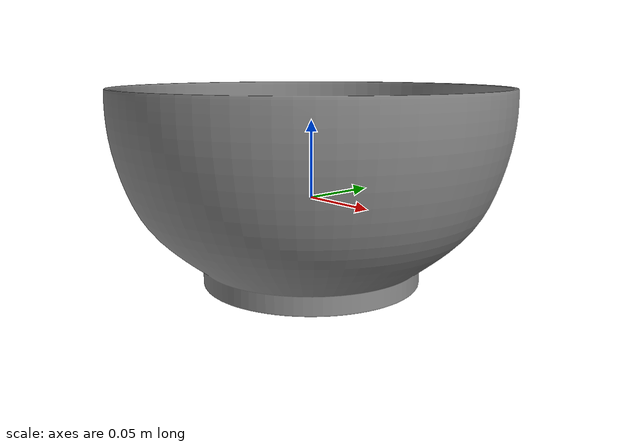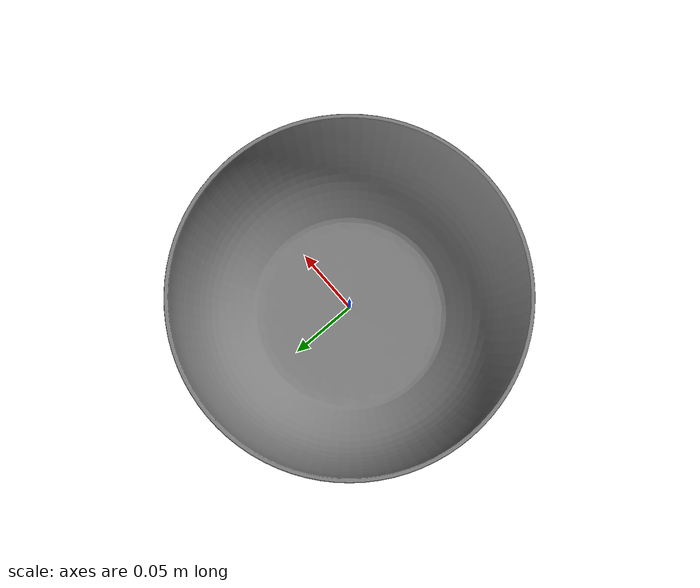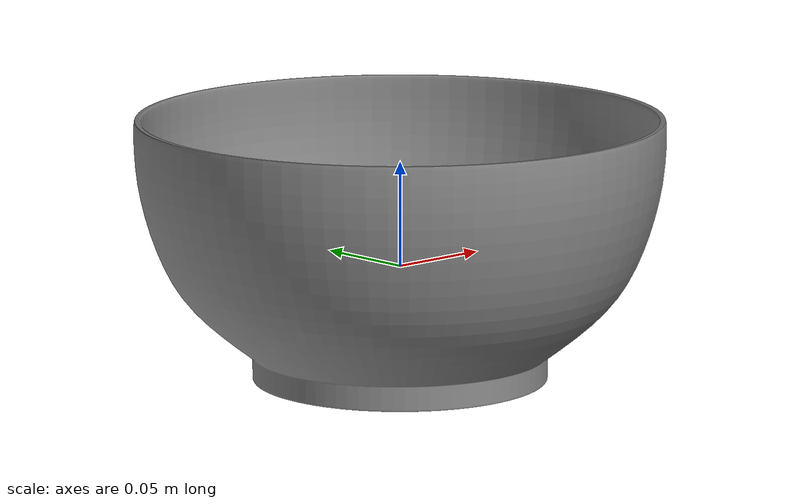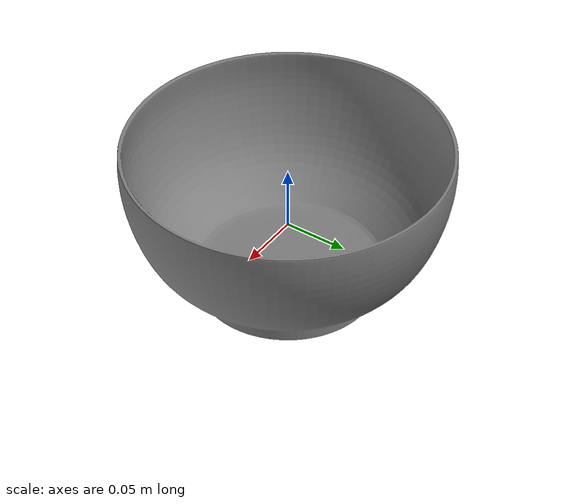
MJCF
<mujoco model="big_bowl">
    <compiler angle="radian" meshdir="../meshes/" texturedir="../meshes/textures/" autolimits="true" inertiafromgeom="false"/>
    <asset>
        <mesh name="big_bowl_visual" file="obj/BigBowl.obj" />
        <mesh name="UCX_BigBowl_001" file="stl/UCX_BigBowl_001.stl" />
		<mesh name="UCX_BigBowl_002" file="stl/UCX_BigBowl_002.stl" />
		<mesh name="UCX_BigBowl_003" file="stl/UCX_BigBowl_003.stl" />
		<mesh name="UCX_BigBowl_004" file="stl/UCX_BigBowl_004.stl" />
		<mesh name="UCX_BigBowl_005" file="stl/UCX_BigBowl_005.stl" />
		<mesh name="UCX_BigBowl_006" file="stl/UCX_BigBowl_006.stl" />
		<mesh name="UCX_BigBowl_007" file="stl/UCX_BigBowl_007.stl" />
		<mesh name="UCX_BigBowl_008" file="stl/UCX_BigBowl_008.stl" />
		<mesh name="UCX_BigBowl_009" file="stl/UCX_BigBowl_009.stl" />
		<mesh name="UCX_BigBowl_010" file="stl/UCX_BigBowl_010.stl" />
		<mesh name="UCX_BigBowl_011" file="stl/UCX_BigBowl_011.stl" />
		<mesh name="UCX_BigBowl_012" file="stl/UCX_BigBowl_012.stl" />
		<mesh name="UCX_BigBowl_013" file="stl/UCX_BigBowl_013.stl" />
		<mesh name="UCX_BigBowl_014" file="stl/UCX_BigBowl_014.stl" />
		<mesh name="UCX_BigBowl_015" file="stl/UCX_BigBowl_015.stl" />
		<mesh name="UCX_BigBowl_016" file="stl/UCX_BigBowl_016.stl" />
		<mesh name="UCX_BigBowl_017" file="stl/UCX_BigBowl_017.stl" />
		<mesh name="UCX_BigBowl_018" file="stl/UCX_BigBowl_018.stl" />
		<mesh name="UCX_BigBowl_019" file="stl/UCX_BigBowl_019.stl" />
		<mesh name="UCX_BigBowl_020" file="stl/UCX_BigBowl_020.stl" />
		<mesh name="UCX_BigBowl_021" file="stl/UCX_BigBowl_021.stl" />
		<mesh name="UCX_BigBowl_022" file="stl/UCX_BigBowl_022.stl" />
		<mesh name="UCX_BigBowl_023" file="stl/UCX_BigBowl_023.stl" />
		<mesh name="UCX_BigBowl_024" file="stl/UCX_BigBowl_024.stl" />
		<mesh name="UCX_BigBowl_025" file="stl/UCX_BigBowl_025.stl" />
		<mesh name="UCX_BigBowl_026" file="stl/UCX_BigBowl_026.stl" />
		<mesh name="UCX_BigBowl_027" file="stl/UCX_BigBowl_027.stl" />
		<mesh name="UCX_BigBowl_028" file="stl/UCX_BigBowl_028.stl" />
		<mesh name="UCX_BigBowl_029" file="stl/UCX_BigBowl_029.stl" />
		<mesh name="UCX_BigBowl_030" file="stl/UCX_BigBowl_030.stl" />
		<mesh name="UCX_BigBowl_031" file="stl/UCX_BigBowl_031.stl" />
		<mesh name="UCX_BigBowl_032" file="stl/UCX_BigBowl_032.stl" />
		<mesh name="UCX_BigBowl_033" file="stl/UCX_BigBowl_033.stl" />
		<mesh name="UCX_BigBowl_034" file="stl/UCX_BigBowl_034.stl" />
		<mesh name="UCX_BigBowl_035" file="stl/UCX_BigBowl_035.stl" />
		<mesh name="UCX_BigBowl_036" file="stl/UCX_BigBowl_036.stl" />
		<mesh name="UCX_BigBowl_037" file="stl/UCX_BigBowl_037.stl" />
		<mesh name="UCX_BigBowl_038" file="stl/UCX_BigBowl_038.stl" />
		<mesh name="UCX_BigBowl_039" file="stl/UCX_BigBowl_039.stl" />
		<mesh name="UCX_BigBowl_040" file="stl/UCX_BigBowl_040.stl" />
		<mesh name="UCX_BigBowl_041" file="stl/UCX_BigBowl_041.stl" />
		<mesh name="UCX_BigBowl_042" file="stl/UCX_BigBowl_042.stl" />
		<mesh name="UCX_BigBowl_043" file="stl/UCX_BigBowl_043.stl" />
		<mesh name="UCX_BigBowl_044" file="stl/UCX_BigBowl_044.stl" />
		<mesh name="UCX_BigBowl_045" file="stl/UCX_BigBowl_045.stl" />
		<mesh name="UCX_BigBowl_046" file="stl/UCX_BigBowl_046.stl" />
		<mesh name="UCX_BigBowl_047" file="stl/UCX_BigBowl_047.stl" />
		<mesh name="UCX_BigBowl_048" file="stl/UCX_BigBowl_048.stl" />
		<mesh name="UCX_BigBowl_049" file="stl/UCX_BigBowl_049.stl" />
		<mesh name="UCX_BigBowl_050" file="stl/UCX_BigBowl_050.stl" />
		<mesh name="UCX_BigBowl_051" file="stl/UCX_BigBowl_051.stl" />
		<mesh name="UCX_BigBowl_052" file="stl/UCX_BigBowl_052.stl" />
		<mesh name="UCX_BigBowl_053" file="stl/UCX_BigBowl_053.stl" />
		<mesh name="UCX_BigBowl_054" file="stl/UCX_BigBowl_054.stl" />
		<mesh name="UCX_BigBowl_055" file="stl/UCX_BigBowl_055.stl" />
		<mesh name="UCX_BigBowl_056" file="stl/UCX_BigBowl_056.stl" />
		<mesh name="UCX_BigBowl_057" file="stl/UCX_BigBowl_057.stl" />
		<mesh name="UCX_BigBowl_058" file="stl/UCX_BigBowl_058.stl" />
		<mesh name="UCX_BigBowl_059" file="stl/UCX_BigBowl_059.stl" />
		<mesh name="UCX_BigBowl_060" file="stl/UCX_BigBowl_060.stl" />
		<mesh name="UCX_BigBowl_061" file="stl/UCX_BigBowl_061.stl" />
		<mesh name="UCX_BigBowl_062" file="stl/UCX_BigBowl_062.stl" />
		<mesh name="UCX_BigBowl_063" file="stl/UCX_BigBowl_063.stl" />
		<mesh name="UCX_BigBowl_064" file="stl/UCX_BigBowl_064.stl" />
		<mesh name="UCX_BigBowl_065" file="stl/UCX_BigBowl_065.stl" />
		<mesh name="UCX_BigBowl_066" file="stl/UCX_BigBowl_066.stl" />
		<mesh name="UCX_BigBowl_067" file="stl/UCX_BigBowl_067.stl" />
		<mesh name="UCX_BigBowl_068" file="stl/UCX_BigBowl_068.stl" />
		<mesh name="UCX_BigBowl_069" file="stl/UCX_BigBowl_069.stl" />
		<mesh name="UCX_BigBowl_070" file="stl/UCX_BigBowl_070.stl" />
		<mesh name="UCX_BigBowl_071" file="stl/UCX_BigBowl_071.stl" />
		<mesh name="UCX_BigBowl_072" file="stl/UCX_BigBowl_072.stl" />
		<mesh name="UCX_BigBowl_073" file="stl/UCX_BigBowl_073.stl" />
		<mesh name="UCX_BigBowl_074" file="stl/UCX_BigBowl_074.stl" />
		<mesh name="UCX_BigBowl_075" file="stl/UCX_BigBowl_075.stl" />
		<mesh name="UCX_BigBowl_076" file="stl/UCX_BigBowl_076.stl" />
		<mesh name="UCX_BigBowl_077" file="stl/UCX_BigBowl_077.stl" />
		<mesh name="UCX_BigBowl_078" file="stl/UCX_BigBowl_078.stl" />
		<mesh name="UCX_BigBowl_079" file="stl/UCX_BigBowl_079.stl" />
		<mesh name="UCX_BigBowl_080" file="stl/UCX_BigBowl_080.stl" />
		<mesh name="UCX_BigBowl_081" file="stl/UCX_BigBowl_081.stl" />
		<mesh name="UCX_BigBowl_082" file="stl/UCX_BigBowl_082.stl" />
		<mesh name="UCX_BigBowl_083" file="stl/UCX_BigBowl_083.stl" />
		<mesh name="UCX_BigBowl_084" file="stl/UCX_BigBowl_084.stl" />
		<mesh name="UCX_BigBowl_085" file="stl/UCX_BigBowl_085.stl" />
		<mesh name="UCX_BigBowl_086" file="stl/UCX_BigBowl_086.stl" />
		<mesh name="UCX_BigBowl_087" file="stl/UCX_BigBowl_087.stl" />
		<mesh name="UCX_BigBowl_088" file="stl/UCX_BigBowl_088.stl" />
		<mesh name="UCX_BigBowl_089" file="stl/UCX_BigBowl_089.stl" />
		<mesh name="UCX_BigBowl_090" file="stl/UCX_BigBowl_090.stl" />
		<mesh name="UCX_BigBowl_091" file="stl/UCX_BigBowl_091.stl" />
		<mesh name="UCX_BigBowl_092" file="stl/UCX_BigBowl_092.stl" />
		<mesh name="UCX_BigBowl_093" file="stl/UCX_BigBowl_093.stl" />
		<mesh name="UCX_BigBowl_094" file="stl/UCX_BigBowl_094.stl" />
		<mesh name="UCX_BigBowl_095" file="stl/UCX_BigBowl_095.stl" />
		<mesh name="UCX_BigBowl_096" file="stl/UCX_BigBowl_096.stl" />
		<mesh name="UCX_BigBowl_097" file="stl/UCX_BigBowl_097.stl" />
		<mesh name="UCX_BigBowl_098" file="stl/UCX_BigBowl_098.stl" />
		<mesh name="UCX_BigBowl_099" file="stl/UCX_BigBowl_099.stl" />
        <mesh name="UCX_BigBowl_100" file="stl/UCX_BigBowl_100.stl" />

        <mesh name="UCX_BigBowl_101" file="stl/UCX_BigBowl_101.stl" />
		<mesh name="UCX_BigBowl_102" file="stl/UCX_BigBowl_102.stl" />
		<mesh name="UCX_BigBowl_103" file="stl/UCX_BigBowl_103.stl" />
		<mesh name="UCX_BigBowl_104" file="stl/UCX_BigBowl_104.stl" />
		<mesh name="UCX_BigBowl_105" file="stl/UCX_BigBowl_105.stl" />
		<mesh name="UCX_BigBowl_106" file="stl/UCX_BigBowl_106.stl" />
		<mesh name="UCX_BigBowl_107" file="stl/UCX_BigBowl_107.stl" />
		<mesh name="UCX_BigBowl_108" file="stl/UCX_BigBowl_108.stl" />
		<mesh name="UCX_BigBowl_109" file="stl/UCX_BigBowl_109.stl" />
		<mesh name="UCX_BigBowl_110" file="stl/UCX_BigBowl_110.stl" />
		<mesh name="UCX_BigBowl_111" file="stl/UCX_BigBowl_111.stl" />
		<mesh name="UCX_BigBowl_112" file="stl/UCX_BigBowl_112.stl" />
		<mesh name="UCX_BigBowl_113" file="stl/UCX_BigBowl_113.stl" />
		<mesh name="UCX_BigBowl_114" file="stl/UCX_BigBowl_114.stl" />
		<mesh name="UCX_BigBowl_115" file="stl/UCX_BigBowl_115.stl" />
		<mesh name="UCX_BigBowl_116" file="stl/UCX_BigBowl_116.stl" />
		<mesh name="UCX_BigBowl_117" file="stl/UCX_BigBowl_117.stl" />
		<mesh name="UCX_BigBowl_118" file="stl/UCX_BigBowl_118.stl" />
		<mesh name="UCX_BigBowl_119" file="stl/UCX_BigBowl_119.stl" />
		<mesh name="UCX_BigBowl_120" file="stl/UCX_BigBowl_120.stl" />
		<mesh name="UCX_BigBowl_121" file="stl/UCX_BigBowl_121.stl" />
		<mesh name="UCX_BigBowl_122" file="stl/UCX_BigBowl_122.stl" />
		<mesh name="UCX_BigBowl_123" file="stl/UCX_BigBowl_123.stl" />
		<mesh name="UCX_BigBowl_124" file="stl/UCX_BigBowl_124.stl" />
		<mesh name="UCX_BigBowl_125" file="stl/UCX_BigBowl_125.stl" />
		<mesh name="UCX_BigBowl_126" file="stl/UCX_BigBowl_126.stl" />
		<mesh name="UCX_BigBowl_127" file="stl/UCX_BigBowl_127.stl" />
		<mesh name="UCX_BigBowl_128" file="stl/UCX_BigBowl_128.stl" />
		<mesh name="UCX_BigBowl_129" file="stl/UCX_BigBowl_129.stl" />
		<mesh name="UCX_BigBowl_130" file="stl/UCX_BigBowl_130.stl" />
		<mesh name="UCX_BigBowl_131" file="stl/UCX_BigBowl_131.stl" />
		<mesh name="UCX_BigBowl_132" file="stl/UCX_BigBowl_132.stl" />
		<mesh name="UCX_BigBowl_133" file="stl/UCX_BigBowl_133.stl" />
		<mesh name="UCX_BigBowl_134" file="stl/UCX_BigBowl_134.stl" />
		<mesh name="UCX_BigBowl_135" file="stl/UCX_BigBowl_135.stl" />
		<mesh name="UCX_BigBowl_136" file="stl/UCX_BigBowl_136.stl" />
		<mesh name="UCX_BigBowl_137" file="stl/UCX_BigBowl_137.stl" />
		<mesh name="UCX_BigBowl_138" file="stl/UCX_BigBowl_138.stl" />
		<mesh name="UCX_BigBowl_139" file="stl/UCX_BigBowl_139.stl" />
		<mesh name="UCX_BigBowl_140" file="stl/UCX_BigBowl_140.stl" />
		<mesh name="UCX_BigBowl_141" file="stl/UCX_BigBowl_141.stl" />
		<mesh name="UCX_BigBowl_142" file="stl/UCX_BigBowl_142.stl" />
		<mesh name="UCX_BigBowl_143" file="stl/UCX_BigBowl_143.stl" />
		<mesh name="UCX_BigBowl_144" file="stl/UCX_BigBowl_144.stl" />
		<mesh name="UCX_BigBowl_145" file="stl/UCX_BigBowl_145.stl" />
		<mesh name="UCX_BigBowl_146" file="stl/UCX_BigBowl_146.stl" />
		<mesh name="UCX_BigBowl_147" file="stl/UCX_BigBowl_147.stl" />
		<mesh name="UCX_BigBowl_148" file="stl/UCX_BigBowl_148.stl" />
		<mesh name="UCX_BigBowl_149" file="stl/UCX_BigBowl_149.stl" />
		<mesh name="UCX_BigBowl_150" file="stl/UCX_BigBowl_150.stl" />
		<mesh name="UCX_BigBowl_151" file="stl/UCX_BigBowl_151.stl" />
		<mesh name="UCX_BigBowl_152" file="stl/UCX_BigBowl_152.stl" />
		<mesh name="UCX_BigBowl_153" file="stl/UCX_BigBowl_153.stl" />
		<mesh name="UCX_BigBowl_154" file="stl/UCX_BigBowl_154.stl" />
		<mesh name="UCX_BigBowl_155" file="stl/UCX_BigBowl_155.stl" />
		<mesh name="UCX_BigBowl_156" file="stl/UCX_BigBowl_156.stl" />
		<mesh name="UCX_BigBowl_157" file="stl/UCX_BigBowl_157.stl" />
		<mesh name="UCX_BigBowl_158" file="stl/UCX_BigBowl_158.stl" />
		<mesh name="UCX_BigBowl_159" file="stl/UCX_BigBowl_159.stl" />
		<mesh name="UCX_BigBowl_160" file="stl/UCX_BigBowl_160.stl" />
		<mesh name="UCX_BigBowl_161" file="stl/UCX_BigBowl_161.stl" />
		<mesh name="UCX_BigBowl_162" file="stl/UCX_BigBowl_162.stl" />
		<mesh name="UCX_BigBowl_163" file="stl/UCX_BigBowl_163.stl" />
		<mesh name="UCX_BigBowl_164" file="stl/UCX_BigBowl_164.stl" />
		<mesh name="UCX_BigBowl_165" file="stl/UCX_BigBowl_165.stl" />
		<mesh name="UCX_BigBowl_166" file="stl/UCX_BigBowl_166.stl" />
		<mesh name="UCX_BigBowl_167" file="stl/UCX_BigBowl_167.stl" />
		<mesh name="UCX_BigBowl_168" file="stl/UCX_BigBowl_168.stl" />
		<mesh name="UCX_BigBowl_169" file="stl/UCX_BigBowl_169.stl" />
		<mesh name="UCX_BigBowl_170" file="stl/UCX_BigBowl_170.stl" />
		<mesh name="UCX_BigBowl_171" file="stl/UCX_BigBowl_171.stl" />
		<mesh name="UCX_BigBowl_172" file="stl/UCX_BigBowl_172.stl" />
		<mesh name="UCX_BigBowl_173" file="stl/UCX_BigBowl_173.stl" />
		<mesh name="UCX_BigBowl_174" file="stl/UCX_BigBowl_174.stl" />
		<mesh name="UCX_BigBowl_175" file="stl/UCX_BigBowl_175.stl" />
		<mesh name="UCX_BigBowl_176" file="stl/UCX_BigBowl_176.stl" />
		<mesh name="UCX_BigBowl_177" file="stl/UCX_BigBowl_177.stl" />
		<mesh name="UCX_BigBowl_178" file="stl/UCX_BigBowl_178.stl" />
		<mesh name="UCX_BigBowl_179" file="stl/UCX_BigBowl_179.stl" />
		<mesh name="UCX_BigBowl_180" file="stl/UCX_BigBowl_180.stl" />
		<mesh name="UCX_BigBowl_181" file="stl/UCX_BigBowl_181.stl" />
		<mesh name="UCX_BigBowl_182" file="stl/UCX_BigBowl_182.stl" />
		<mesh name="UCX_BigBowl_183" file="stl/UCX_BigBowl_183.stl" />
		<mesh name="UCX_BigBowl_184" file="stl/UCX_BigBowl_184.stl" />
		<mesh name="UCX_BigBowl_185" file="stl/UCX_BigBowl_185.stl" />
		<mesh name="UCX_BigBowl_186" file="stl/UCX_BigBowl_186.stl" />
		<mesh name="UCX_BigBowl_187" file="stl/UCX_BigBowl_187.stl" />
		<mesh name="UCX_BigBowl_188" file="stl/UCX_BigBowl_188.stl" />
		<mesh name="UCX_BigBowl_189" file="stl/UCX_BigBowl_189.stl" />
		<mesh name="UCX_BigBowl_190" file="stl/UCX_BigBowl_190.stl" />
		<mesh name="UCX_BigBowl_191" file="stl/UCX_BigBowl_191.stl" />
		<mesh name="UCX_BigBowl_192" file="stl/UCX_BigBowl_192.stl" />
		<mesh name="UCX_BigBowl_193" file="stl/UCX_BigBowl_193.stl" />
    </asset>
    <default>
        <default class="big_bowl_visual">
            <geom contype="0" conaffinity="0" />
        </default>
        <default class="big_bowl_collision">
            <geom rgba="0.9 0.9 0.9 0.0" />
        </default>
    </default>
    <worldbody>
        <body name="big_bowl">
            <freejoint />
            <inertial mass="0.3884798586368561" pos="-2.0208735804772004e-06 2.0586249149801006e-07 -0.0029487055726349354" diaginertia="0.002534793224185705 0.0025348018389195204 0.003565368941053748"/>
            <geom name="big_bowl_visual" pos="0.0 0.0 0.0" quat="1.0 0.0 0.0 0.0" type="mesh" mesh="big_bowl_visual" class="big_bowl_visual" />
            <geom name="UCX_BigBowl_001" type="mesh" pos="0.0 0.0 0.0" quat="1.0 0.0 0.0 0.0" mesh="UCX_BigBowl_001" class="big_bowl_collision"/>
            <geom name="UCX_BigBowl_002" type="mesh" pos="0.0 0.0 0.0" quat="1.0 0.0 0.0 0.0" mesh="UCX_BigBowl_002" class="big_bowl_collision"/>
            <geom name="UCX_BigBowl_003" type="mesh" pos="0.0 0.0 0.0" quat="1.0 0.0 0.0 0.0" mesh="UCX_BigBowl_003" class="big_bowl_collision"/>
            <geom name="UCX_BigBowl_004" type="mesh" pos="0.0 0.0 0.0" quat="1.0 0.0 0.0 0.0" mesh="UCX_BigBowl_004" class="big_bowl_collision"/>
            <geom name="UCX_BigBowl_005" type="mesh" pos="0.0 0.0 0.0" quat="1.0 0.0 0.0 0.0" mesh="UCX_BigBowl_005" class="big_bowl_collision"/>
            <geom name="UCX_BigBowl_006" type="mesh" pos="0.0 0.0 0.0" quat="1.0 0.0 0.0 0.0" mesh="UCX_BigBowl_006" class="big_bowl_collision"/>
            <geom name="UCX_BigBowl_007" type="mesh" pos="0.0 0.0 0.0" quat="1.0 0.0 0.0 0.0" mesh="UCX_BigBowl_007" class="big_bowl_collision"/>
            <geom name="UCX_BigBowl_008" type="mesh" pos="0.0 0.0 0.0" quat="1.0 0.0 0.0 0.0" mesh="UCX_BigBowl_008" class="big_bowl_collision"/>
            <geom name="UCX_BigBowl_009" type="mesh" pos="0.0 0.0 0.0" quat="1.0 0.0 0.0 0.0" mesh="UCX_BigBowl_009" class="big_bowl_collision"/>
            <geom name="UCX_BigBowl_010" type="mesh" pos="0.0 0.0 0.0" quat="1.0 0.0 0.0 0.0" mesh="UCX_BigBowl_010" class="big_bowl_collision"/>
            <geom name="UCX_BigBowl_011" type="mesh" pos="0.0 0.0 0.0" quat="1.0 0.0 0.0 0.0" mesh="UCX_BigBowl_011" class="big_bowl_collision"/>
            <geom name="UCX_BigBowl_012" type="mesh" pos="0.0 0.0 0.0" quat="1.0 0.0 0.0 0.0" mesh="UCX_BigBowl_012" class="big_bowl_collision"/>
            <geom name="UCX_BigBowl_013" type="mesh" pos="0.0 0.0 0.0" quat="1.0 0.0 0.0 0.0" mesh="UCX_BigBowl_013" class="big_bowl_collision"/>
            <geom name="UCX_BigBowl_014" type="mesh" pos="0.0 0.0 0.0" quat="1.0 0.0 0.0 0.0" mesh="UCX_BigBowl_014" class="big_bowl_collision"/>
            <geom name="UCX_BigBowl_015" type="mesh" pos="0.0 0.0 0.0" quat="1.0 0.0 0.0 0.0" mesh="UCX_BigBowl_015" class="big_bowl_collision"/>
            <geom name="UCX_BigBowl_016" type="mesh" pos="0.0 0.0 0.0" quat="1.0 0.0 0.0 0.0" mesh="UCX_BigBowl_016" class="big_bowl_collision"/>
            <geom name="UCX_BigBowl_017" type="mesh" pos="0.0 0.0 0.0" quat="1.0 0.0 0.0 0.0" mesh="UCX_BigBowl_017" class="big_bowl_collision"/>
            <geom name="UCX_BigBowl_018" type="mesh" pos="0.0 0.0 0.0" quat="1.0 0.0 0.0 0.0" mesh="UCX_BigBowl_018" class="big_bowl_collision"/>
            <geom name="UCX_BigBowl_019" type="mesh" pos="0.0 0.0 0.0" quat="1.0 0.0 0.0 0.0" mesh="UCX_BigBowl_019" class="big_bowl_collision"/>
            <geom name="UCX_BigBowl_020" type="mesh" pos="0.0 0.0 0.0" quat="1.0 0.0 0.0 0.0" mesh="UCX_BigBowl_020" class="big_bowl_collision"/>
            <geom name="UCX_BigBowl_021" type="mesh" pos="0.0 0.0 0.0" quat="1.0 0.0 0.0 0.0" mesh="UCX_BigBowl_021" class="big_bowl_collision"/>
            <geom name="UCX_BigBowl_022" type="mesh" pos="0.0 0.0 0.0" quat="1.0 0.0 0.0 0.0" mesh="UCX_BigBowl_022" class="big_bowl_collision"/>
            <geom name="UCX_BigBowl_023" type="mesh" pos="0.0 0.0 0.0" quat="1.0 0.0 0.0 0.0" mesh="UCX_BigBowl_023" class="big_bowl_collision"/>
            <geom name="UCX_BigBowl_024" type="mesh" pos="0.0 0.0 0.0" quat="1.0 0.0 0.0 0.0" mesh="UCX_BigBowl_024" class="big_bowl_collision"/>
            <geom name="UCX_BigBowl_025" type="mesh" pos="0.0 0.0 0.0" quat="1.0 0.0 0.0 0.0" mesh="UCX_BigBowl_025" class="big_bowl_collision"/>
            <geom name="UCX_BigBowl_026" type="mesh" pos="0.0 0.0 0.0" quat="1.0 0.0 0.0 0.0" mesh="UCX_BigBowl_026" class="big_bowl_collision"/>
            <geom name="UCX_BigBowl_027" type="mesh" pos="0.0 0.0 0.0" quat="1.0 0.0 0.0 0.0" mesh="UCX_BigBowl_027" class="big_bowl_collision"/>
            <geom name="UCX_BigBowl_028" type="mesh" pos="0.0 0.0 0.0" quat="1.0 0.0 0.0 0.0" mesh="UCX_BigBowl_028" class="big_bowl_collision"/>
            <geom name="UCX_BigBowl_029" type="mesh" pos="0.0 0.0 0.0" quat="1.0 0.0 0.0 0.0" mesh="UCX_BigBowl_029" class="big_bowl_collision"/>
            <geom name="UCX_BigBowl_030" type="mesh" pos="0.0 0.0 0.0" quat="1.0 0.0 0.0 0.0" mesh="UCX_BigBowl_030" class="big_bowl_collision"/>
            <geom name="UCX_BigBowl_031" type="mesh" pos="0.0 0.0 0.0" quat="1.0 0.0 0.0 0.0" mesh="UCX_BigBowl_031" class="big_bowl_collision"/>
            <geom name="UCX_BigBowl_032" type="mesh" pos="0.0 0.0 0.0" quat="1.0 0.0 0.0 0.0" mesh="UCX_BigBowl_032" class="big_bowl_collision"/>
            <geom name="UCX_BigBowl_033" type="mesh" pos="0.0 0.0 0.0" quat="1.0 0.0 0.0 0.0" mesh="UCX_BigBowl_033" class="big_bowl_collision"/>
            <geom name="UCX_BigBowl_034" type="mesh" pos="0.0 0.0 0.0" quat="1.0 0.0 0.0 0.0" mesh="UCX_BigBowl_034" class="big_bowl_collision"/>
            <geom name="UCX_BigBowl_035" type="mesh" pos="0.0 0.0 0.0" quat="1.0 0.0 0.0 0.0" mesh="UCX_BigBowl_035" class="big_bowl_collision"/>
            <geom name="UCX_BigBowl_036" type="mesh" pos="0.0 0.0 0.0" quat="1.0 0.0 0.0 0.0" mesh="UCX_BigBowl_036" class="big_bowl_collision"/>
            <geom name="UCX_BigBowl_037" type="mesh" pos="0.0 0.0 0.0" quat="1.0 0.0 0.0 0.0" mesh="UCX_BigBowl_037" class="big_bowl_collision"/>
            <geom name="UCX_BigBowl_038" type="mesh" pos="0.0 0.0 0.0" quat="1.0 0.0 0.0 0.0" mesh="UCX_BigBowl_038" class="big_bowl_collision"/>
            <geom name="UCX_BigBowl_039" type="mesh" pos="0.0 0.0 0.0" quat="1.0 0.0 0.0 0.0" mesh="UCX_BigBowl_039" class="big_bowl_collision"/>
            <geom name="UCX_BigBowl_040" type="mesh" pos="0.0 0.0 0.0" quat="1.0 0.0 0.0 0.0" mesh="UCX_BigBowl_040" class="big_bowl_collision"/>
            <geom name="UCX_BigBowl_041" type="mesh" pos="0.0 0.0 0.0" quat="1.0 0.0 0.0 0.0" mesh="UCX_BigBowl_041" class="big_bowl_collision"/>
            <geom name="UCX_BigBowl_042" type="mesh" pos="0.0 0.0 0.0" quat="1.0 0.0 0.0 0.0" mesh="UCX_BigBowl_042" class="big_bowl_collision"/>
            <geom name="UCX_BigBowl_043" type="mesh" pos="0.0 0.0 0.0" quat="1.0 0.0 0.0 0.0" mesh="UCX_BigBowl_043" class="big_bowl_collision"/>
            <geom name="UCX_BigBowl_044" type="mesh" pos="0.0 0.0 0.0" quat="1.0 0.0 0.0 0.0" mesh="UCX_BigBowl_044" class="big_bowl_collision"/>
            <geom name="UCX_BigBowl_045" type="mesh" pos="0.0 0.0 0.0" quat="1.0 0.0 0.0 0.0" mesh="UCX_BigBowl_045" class="big_bowl_collision"/>
            <geom name="UCX_BigBowl_046" type="mesh" pos="0.0 0.0 0.0" quat="1.0 0.0 0.0 0.0" mesh="UCX_BigBowl_046" class="big_bowl_collision"/>
            <geom name="UCX_BigBowl_047" type="mesh" pos="0.0 0.0 0.0" quat="1.0 0.0 0.0 0.0" mesh="UCX_BigBowl_047" class="big_bowl_collision"/>
            <geom name="UCX_BigBowl_048" type="mesh" pos="0.0 0.0 0.0" quat="1.0 0.0 0.0 0.0" mesh="UCX_BigBowl_048" class="big_bowl_collision"/>
            <geom name="UCX_BigBowl_049" type="mesh" pos="0.0 0.0 0.0" quat="1.0 0.0 0.0 0.0" mesh="UCX_BigBowl_049" class="big_bowl_collision"/>
            <geom name="UCX_BigBowl_050" type="mesh" pos="0.0 0.0 0.0" quat="1.0 0.0 0.0 0.0" mesh="UCX_BigBowl_050" class="big_bowl_collision"/>
            <geom name="UCX_BigBowl_051" type="mesh" pos="0.0 0.0 0.0" quat="1.0 0.0 0.0 0.0" mesh="UCX_BigBowl_051" class="big_bowl_collision"/>
            <geom name="UCX_BigBowl_052" type="mesh" pos="0.0 0.0 0.0" quat="1.0 0.0 0.0 0.0" mesh="UCX_BigBowl_052" class="big_bowl_collision"/>
            <geom name="UCX_BigBowl_053" type="mesh" pos="0.0 0.0 0.0" quat="1.0 0.0 0.0 0.0" mesh="UCX_BigBowl_053" class="big_bowl_collision"/>
            <geom name="UCX_BigBowl_054" type="mesh" pos="0.0 0.0 0.0" quat="1.0 0.0 0.0 0.0" mesh="UCX_BigBowl_054" class="big_bowl_collision"/>
            <geom name="UCX_BigBowl_055" type="mesh" pos="0.0 0.0 0.0" quat="1.0 0.0 0.0 0.0" mesh="UCX_BigBowl_055" class="big_bowl_collision"/>
            <geom name="UCX_BigBowl_056" type="mesh" pos="0.0 0.0 0.0" quat="1.0 0.0 0.0 0.0" mesh="UCX_BigBowl_056" class="big_bowl_collision"/>
            <geom name="UCX_BigBowl_057" type="mesh" pos="0.0 0.0 0.0" quat="1.0 0.0 0.0 0.0" mesh="UCX_BigBowl_057" class="big_bowl_collision"/>
            <geom name="UCX_BigBowl_058" type="mesh" pos="0.0 0.0 0.0" quat="1.0 0.0 0.0 0.0" mesh="UCX_BigBowl_058" class="big_bowl_collision"/>
            <geom name="UCX_BigBowl_059" type="mesh" pos="0.0 0.0 0.0" quat="1.0 0.0 0.0 0.0" mesh="UCX_BigBowl_059" class="big_bowl_collision"/>
            <geom name="UCX_BigBowl_060" type="mesh" pos="0.0 0.0 0.0" quat="1.0 0.0 0.0 0.0" mesh="UCX_BigBowl_060" class="big_bowl_collision"/>
            <geom name="UCX_BigBowl_061" type="mesh" pos="0.0 0.0 0.0" quat="1.0 0.0 0.0 0.0" mesh="UCX_BigBowl_061" class="big_bowl_collision"/>
            <geom name="UCX_BigBowl_062" type="mesh" pos="0.0 0.0 0.0" quat="1.0 0.0 0.0 0.0" mesh="UCX_BigBowl_062" class="big_bowl_collision"/>
            <geom name="UCX_BigBowl_063" type="mesh" pos="0.0 0.0 0.0" quat="1.0 0.0 0.0 0.0" mesh="UCX_BigBowl_063" class="big_bowl_collision"/>
            <geom name="UCX_BigBowl_064" type="mesh" pos="0.0 0.0 0.0" quat="1.0 0.0 0.0 0.0" mesh="UCX_BigBowl_064" class="big_bowl_collision"/>
            <geom name="UCX_BigBowl_065" type="mesh" pos="0.0 0.0 0.0" quat="1.0 0.0 0.0 0.0" mesh="UCX_BigBowl_065" class="big_bowl_collision"/>
            <geom name="UCX_BigBowl_066" type="mesh" pos="0.0 0.0 0.0" quat="1.0 0.0 0.0 0.0" mesh="UCX_BigBowl_066" class="big_bowl_collision"/>
            <geom name="UCX_BigBowl_067" type="mesh" pos="0.0 0.0 0.0" quat="1.0 0.0 0.0 0.0" mesh="UCX_BigBowl_067" class="big_bowl_collision"/>
            <geom name="UCX_BigBowl_068" type="mesh" pos="0.0 0.0 0.0" quat="1.0 0.0 0.0 0.0" mesh="UCX_BigBowl_068" class="big_bowl_collision"/>
            <geom name="UCX_BigBowl_069" type="mesh" pos="0.0 0.0 0.0" quat="1.0 0.0 0.0 0.0" mesh="UCX_BigBowl_069" class="big_bowl_collision"/>
            <geom name="UCX_BigBowl_070" type="mesh" pos="0.0 0.0 0.0" quat="1.0 0.0 0.0 0.0" mesh="UCX_BigBowl_070" class="big_bowl_collision"/>
            <geom name="UCX_BigBowl_071" type="mesh" pos="0.0 0.0 0.0" quat="1.0 0.0 0.0 0.0" mesh="UCX_BigBowl_071" class="big_bowl_collision"/>
            <geom name="UCX_BigBowl_072" type="mesh" pos="0.0 0.0 0.0" quat="1.0 0.0 0.0 0.0" mesh="UCX_BigBowl_072" class="big_bowl_collision"/>
            <geom name="UCX_BigBowl_073" type="mesh" pos="0.0 0.0 0.0" quat="1.0 0.0 0.0 0.0" mesh="UCX_BigBowl_073" class="big_bowl_collision"/>
            <geom name="UCX_BigBowl_074" type="mesh" pos="0.0 0.0 0.0" quat="1.0 0.0 0.0 0.0" mesh="UCX_BigBowl_074" class="big_bowl_collision"/>
            <geom name="UCX_BigBowl_075" type="mesh" pos="0.0 0.0 0.0" quat="1.0 0.0 0.0 0.0" mesh="UCX_BigBowl_075" class="big_bowl_collision"/>
            <geom name="UCX_BigBowl_076" type="mesh" pos="0.0 0.0 0.0" quat="1.0 0.0 0.0 0.0" mesh="UCX_BigBowl_076" class="big_bowl_collision"/>
            <geom name="UCX_BigBowl_077" type="mesh" pos="0.0 0.0 0.0" quat="1.0 0.0 0.0 0.0" mesh="UCX_BigBowl_077" class="big_bowl_collision"/>
            <geom name="UCX_BigBowl_078" type="mesh" pos="0.0 0.0 0.0" quat="1.0 0.0 0.0 0.0" mesh="UCX_BigBowl_078" class="big_bowl_collision"/>
            <geom name="UCX_BigBowl_079" type="mesh" pos="0.0 0.0 0.0" quat="1.0 0.0 0.0 0.0" mesh="UCX_BigBowl_079" class="big_bowl_collision"/>
            <geom name="UCX_BigBowl_080" type="mesh" pos="0.0 0.0 0.0" quat="1.0 0.0 0.0 0.0" mesh="UCX_BigBowl_080" class="big_bowl_collision"/>
            <geom name="UCX_BigBowl_081" type="mesh" pos="0.0 0.0 0.0" quat="1.0 0.0 0.0 0.0" mesh="UCX_BigBowl_081" class="big_bowl_collision"/>
            <geom name="UCX_BigBowl_082" type="mesh" pos="0.0 0.0 0.0" quat="1.0 0.0 0.0 0.0" mesh="UCX_BigBowl_082" class="big_bowl_collision"/>
            <geom name="UCX_BigBowl_083" type="mesh" pos="0.0 0.0 0.0" quat="1.0 0.0 0.0 0.0" mesh="UCX_BigBowl_083" class="big_bowl_collision"/>
            <geom name="UCX_BigBowl_084" type="mesh" pos="0.0 0.0 0.0" quat="1.0 0.0 0.0 0.0" mesh="UCX_BigBowl_084" class="big_bowl_collision"/>
            <geom name="UCX_BigBowl_085" type="mesh" pos="0.0 0.0 0.0" quat="1.0 0.0 0.0 0.0" mesh="UCX_BigBowl_085" class="big_bowl_collision"/>
            <geom name="UCX_BigBowl_086" type="mesh" pos="0.0 0.0 0.0" quat="1.0 0.0 0.0 0.0" mesh="UCX_BigBowl_086" class="big_bowl_collision"/>
            <geom name="UCX_BigBowl_087" type="mesh" pos="0.0 0.0 0.0" quat="1.0 0.0 0.0 0.0" mesh="UCX_BigBowl_087" class="big_bowl_collision"/>
            <geom name="UCX_BigBowl_088" type="mesh" pos="0.0 0.0 0.0" quat="1.0 0.0 0.0 0.0" mesh="UCX_BigBowl_088" class="big_bowl_collision"/>
            <geom name="UCX_BigBowl_089" type="mesh" pos="0.0 0.0 0.0" quat="1.0 0.0 0.0 0.0" mesh="UCX_BigBowl_089" class="big_bowl_collision"/>
            <geom name="UCX_BigBowl_090" type="mesh" pos="0.0 0.0 0.0" quat="1.0 0.0 0.0 0.0" mesh="UCX_BigBowl_090" class="big_bowl_collision"/>
            <geom name="UCX_BigBowl_091" type="mesh" pos="0.0 0.0 0.0" quat="1.0 0.0 0.0 0.0" mesh="UCX_BigBowl_091" class="big_bowl_collision"/>
            <geom name="UCX_BigBowl_092" type="mesh" pos="0.0 0.0 0.0" quat="1.0 0.0 0.0 0.0" mesh="UCX_BigBowl_092" class="big_bowl_collision"/>
            <geom name="UCX_BigBowl_093" type="mesh" pos="0.0 0.0 0.0" quat="1.0 0.0 0.0 0.0" mesh="UCX_BigBowl_093" class="big_bowl_collision"/>
            <geom name="UCX_BigBowl_094" type="mesh" pos="0.0 0.0 0.0" quat="1.0 0.0 0.0 0.0" mesh="UCX_BigBowl_094" class="big_bowl_collision"/>
            <geom name="UCX_BigBowl_095" type="mesh" pos="0.0 0.0 0.0" quat="1.0 0.0 0.0 0.0" mesh="UCX_BigBowl_095" class="big_bowl_collision"/>
            <geom name="UCX_BigBowl_096" type="mesh" pos="0.0 0.0 0.0" quat="1.0 0.0 0.0 0.0" mesh="UCX_BigBowl_096" class="big_bowl_collision"/>
            <geom name="UCX_BigBowl_097" type="mesh" pos="0.0 0.0 0.0" quat="1.0 0.0 0.0 0.0" mesh="UCX_BigBowl_097" class="big_bowl_collision"/>
            <geom name="UCX_BigBowl_098" type="mesh" pos="0.0 0.0 0.0" quat="1.0 0.0 0.0 0.0" mesh="UCX_BigBowl_098" class="big_bowl_collision"/>
            <geom name="UCX_BigBowl_099" type="mesh" pos="0.0 0.0 0.0" quat="1.0 0.0 0.0 0.0" mesh="UCX_BigBowl_099" class="big_bowl_collision"/>
            <geom name="UCX_BigBowl_100" type="mesh" pos="0.0 0.0 0.0" quat="1.0 0.0 0.0 0.0" mesh="UCX_BigBowl_100" class="big_bowl_collision"/>

            <geom name="UCX_BigBowl_101" type="mesh" pos="0.0 0.0 0.0" quat="1.0 0.0 0.0 0.0" mesh="UCX_BigBowl_101" class="big_bowl_collision"/>
            <geom name="UCX_BigBowl_102" type="mesh" pos="0.0 0.0 0.0" quat="1.0 0.0 0.0 0.0" mesh="UCX_BigBowl_102" class="big_bowl_collision"/>
            <geom name="UCX_BigBowl_103" type="mesh" pos="0.0 0.0 0.0" quat="1.0 0.0 0.0 0.0" mesh="UCX_BigBowl_103" class="big_bowl_collision"/>
            <geom name="UCX_BigBowl_104" type="mesh" pos="0.0 0.0 0.0" quat="1.0 0.0 0.0 0.0" mesh="UCX_BigBowl_104" class="big_bowl_collision"/>
            <geom name="UCX_BigBowl_105" type="mesh" pos="0.0 0.0 0.0" quat="1.0 0.0 0.0 0.0" mesh="UCX_BigBowl_105" class="big_bowl_collision"/>
            <geom name="UCX_BigBowl_106" type="mesh" pos="0.0 0.0 0.0" quat="1.0 0.0 0.0 0.0" mesh="UCX_BigBowl_106" class="big_bowl_collision"/>
            <geom name="UCX_BigBowl_107" type="mesh" pos="0.0 0.0 0.0" quat="1.0 0.0 0.0 0.0" mesh="UCX_BigBowl_107" class="big_bowl_collision"/>
            <geom name="UCX_BigBowl_108" type="mesh" pos="0.0 0.0 0.0" quat="1.0 0.0 0.0 0.0" mesh="UCX_BigBowl_108" class="big_bowl_collision"/>
            <geom name="UCX_BigBowl_109" type="mesh" pos="0.0 0.0 0.0" quat="1.0 0.0 0.0 0.0" mesh="UCX_BigBowl_109" class="big_bowl_collision"/>
            <geom name="UCX_BigBowl_110" type="mesh" pos="0.0 0.0 0.0" quat="1.0 0.0 0.0 0.0" mesh="UCX_BigBowl_110" class="big_bowl_collision"/>
            <geom name="UCX_BigBowl_111" type="mesh" pos="0.0 0.0 0.0" quat="1.0 0.0 0.0 0.0" mesh="UCX_BigBowl_111" class="big_bowl_collision"/>
            <geom name="UCX_BigBowl_112" type="mesh" pos="0.0 0.0 0.0" quat="1.0 0.0 0.0 0.0" mesh="UCX_BigBowl_112" class="big_bowl_collision"/>
            <geom name="UCX_BigBowl_113" type="mesh" pos="0.0 0.0 0.0" quat="1.0 0.0 0.0 0.0" mesh="UCX_BigBowl_113" class="big_bowl_collision"/>
            <geom name="UCX_BigBowl_114" type="mesh" pos="0.0 0.0 0.0" quat="1.0 0.0 0.0 0.0" mesh="UCX_BigBowl_114" class="big_bowl_collision"/>
            <geom name="UCX_BigBowl_115" type="mesh" pos="0.0 0.0 0.0" quat="1.0 0.0 0.0 0.0" mesh="UCX_BigBowl_115" class="big_bowl_collision"/>
            <geom name="UCX_BigBowl_116" type="mesh" pos="0.0 0.0 0.0" quat="1.0 0.0 0.0 0.0" mesh="UCX_BigBowl_116" class="big_bowl_collision"/>
            <geom name="UCX_BigBowl_117" type="mesh" pos="0.0 0.0 0.0" quat="1.0 0.0 0.0 0.0" mesh="UCX_BigBowl_117" class="big_bowl_collision"/>
            <geom name="UCX_BigBowl_118" type="mesh" pos="0.0 0.0 0.0" quat="1.0 0.0 0.0 0.0" mesh="UCX_BigBowl_118" class="big_bowl_collision"/>
            <geom name="UCX_BigBowl_119" type="mesh" pos="0.0 0.0 0.0" quat="1.0 0.0 0.0 0.0" mesh="UCX_BigBowl_119" class="big_bowl_collision"/>
            <geom name="UCX_BigBowl_120" type="mesh" pos="0.0 0.0 0.0" quat="1.0 0.0 0.0 0.0" mesh="UCX_BigBowl_120" class="big_bowl_collision"/>
            <geom name="UCX_BigBowl_121" type="mesh" pos="0.0 0.0 0.0" quat="1.0 0.0 0.0 0.0" mesh="UCX_BigBowl_121" class="big_bowl_collision"/>
            <geom name="UCX_BigBowl_122" type="mesh" pos="0.0 0.0 0.0" quat="1.0 0.0 0.0 0.0" mesh="UCX_BigBowl_122" class="big_bowl_collision"/>
            <geom name="UCX_BigBowl_123" type="mesh" pos="0.0 0.0 0.0" quat="1.0 0.0 0.0 0.0" mesh="UCX_BigBowl_123" class="big_bowl_collision"/>
            <geom name="UCX_BigBowl_124" type="mesh" pos="0.0 0.0 0.0" quat="1.0 0.0 0.0 0.0" mesh="UCX_BigBowl_124" class="big_bowl_collision"/>
            <geom name="UCX_BigBowl_125" type="mesh" pos="0.0 0.0 0.0" quat="1.0 0.0 0.0 0.0" mesh="UCX_BigBowl_125" class="big_bowl_collision"/>
            <geom name="UCX_BigBowl_126" type="mesh" pos="0.0 0.0 0.0" quat="1.0 0.0 0.0 0.0" mesh="UCX_BigBowl_126" class="big_bowl_collision"/>
            <geom name="UCX_BigBowl_127" type="mesh" pos="0.0 0.0 0.0" quat="1.0 0.0 0.0 0.0" mesh="UCX_BigBowl_127" class="big_bowl_collision"/>
            <geom name="UCX_BigBowl_128" type="mesh" pos="0.0 0.0 0.0" quat="1.0 0.0 0.0 0.0" mesh="UCX_BigBowl_128" class="big_bowl_collision"/>
            <geom name="UCX_BigBowl_129" type="mesh" pos="0.0 0.0 0.0" quat="1.0 0.0 0.0 0.0" mesh="UCX_BigBowl_129" class="big_bowl_collision"/>
            <geom name="UCX_BigBowl_130" type="mesh" pos="0.0 0.0 0.0" quat="1.0 0.0 0.0 0.0" mesh="UCX_BigBowl_130" class="big_bowl_collision"/>
            <geom name="UCX_BigBowl_131" type="mesh" pos="0.0 0.0 0.0" quat="1.0 0.0 0.0 0.0" mesh="UCX_BigBowl_131" class="big_bowl_collision"/>
            <geom name="UCX_BigBowl_132" type="mesh" pos="0.0 0.0 0.0" quat="1.0 0.0 0.0 0.0" mesh="UCX_BigBowl_132" class="big_bowl_collision"/>
            <geom name="UCX_BigBowl_133" type="mesh" pos="0.0 0.0 0.0" quat="1.0 0.0 0.0 0.0" mesh="UCX_BigBowl_133" class="big_bowl_collision"/>
            <geom name="UCX_BigBowl_134" type="mesh" pos="0.0 0.0 0.0" quat="1.0 0.0 0.0 0.0" mesh="UCX_BigBowl_134" class="big_bowl_collision"/>
            <geom name="UCX_BigBowl_135" type="mesh" pos="0.0 0.0 0.0" quat="1.0 0.0 0.0 0.0" mesh="UCX_BigBowl_135" class="big_bowl_collision"/>
            <geom name="UCX_BigBowl_136" type="mesh" pos="0.0 0.0 0.0" quat="1.0 0.0 0.0 0.0" mesh="UCX_BigBowl_136" class="big_bowl_collision"/>
            <geom name="UCX_BigBowl_137" type="mesh" pos="0.0 0.0 0.0" quat="1.0 0.0 0.0 0.0" mesh="UCX_BigBowl_137" class="big_bowl_collision"/>
            <geom name="UCX_BigBowl_138" type="mesh" pos="0.0 0.0 0.0" quat="1.0 0.0 0.0 0.0" mesh="UCX_BigBowl_138" class="big_bowl_collision"/>
            <geom name="UCX_BigBowl_139" type="mesh" pos="0.0 0.0 0.0" quat="1.0 0.0 0.0 0.0" mesh="UCX_BigBowl_139" class="big_bowl_collision"/>
            <geom name="UCX_BigBowl_140" type="mesh" pos="0.0 0.0 0.0" quat="1.0 0.0 0.0 0.0" mesh="UCX_BigBowl_140" class="big_bowl_collision"/>
            <geom name="UCX_BigBowl_141" type="mesh" pos="0.0 0.0 0.0" quat="1.0 0.0 0.0 0.0" mesh="UCX_BigBowl_141" class="big_bowl_collision"/>
            <geom name="UCX_BigBowl_142" type="mesh" pos="0.0 0.0 0.0" quat="1.0 0.0 0.0 0.0" mesh="UCX_BigBowl_142" class="big_bowl_collision"/>
            <geom name="UCX_BigBowl_143" type="mesh" pos="0.0 0.0 0.0" quat="1.0 0.0 0.0 0.0" mesh="UCX_BigBowl_143" class="big_bowl_collision"/>
            <geom name="UCX_BigBowl_144" type="mesh" pos="0.0 0.0 0.0" quat="1.0 0.0 0.0 0.0" mesh="UCX_BigBowl_144" class="big_bowl_collision"/>
            <geom name="UCX_BigBowl_145" type="mesh" pos="0.0 0.0 0.0" quat="1.0 0.0 0.0 0.0" mesh="UCX_BigBowl_145" class="big_bowl_collision"/>
            <geom name="UCX_BigBowl_146" type="mesh" pos="0.0 0.0 0.0" quat="1.0 0.0 0.0 0.0" mesh="UCX_BigBowl_146" class="big_bowl_collision"/>
            <geom name="UCX_BigBowl_147" type="mesh" pos="0.0 0.0 0.0" quat="1.0 0.0 0.0 0.0" mesh="UCX_BigBowl_147" class="big_bowl_collision"/>
            <geom name="UCX_BigBowl_148" type="mesh" pos="0.0 0.0 0.0" quat="1.0 0.0 0.0 0.0" mesh="UCX_BigBowl_148" class="big_bowl_collision"/>
            <geom name="UCX_BigBowl_149" type="mesh" pos="0.0 0.0 0.0" quat="1.0 0.0 0.0 0.0" mesh="UCX_BigBowl_149" class="big_bowl_collision"/>
            <geom name="UCX_BigBowl_150" type="mesh" pos="0.0 0.0 0.0" quat="1.0 0.0 0.0 0.0" mesh="UCX_BigBowl_150" class="big_bowl_collision"/>
            <geom name="UCX_BigBowl_151" type="mesh" pos="0.0 0.0 0.0" quat="1.0 0.0 0.0 0.0" mesh="UCX_BigBowl_151" class="big_bowl_collision"/>
            <geom name="UCX_BigBowl_152" type="mesh" pos="0.0 0.0 0.0" quat="1.0 0.0 0.0 0.0" mesh="UCX_BigBowl_152" class="big_bowl_collision"/>
            <geom name="UCX_BigBowl_153" type="mesh" pos="0.0 0.0 0.0" quat="1.0 0.0 0.0 0.0" mesh="UCX_BigBowl_153" class="big_bowl_collision"/>
            <geom name="UCX_BigBowl_154" type="mesh" pos="0.0 0.0 0.0" quat="1.0 0.0 0.0 0.0" mesh="UCX_BigBowl_154" class="big_bowl_collision"/>
            <geom name="UCX_BigBowl_155" type="mesh" pos="0.0 0.0 0.0" quat="1.0 0.0 0.0 0.0" mesh="UCX_BigBowl_155" class="big_bowl_collision"/>
            <geom name="UCX_BigBowl_156" type="mesh" pos="0.0 0.0 0.0" quat="1.0 0.0 0.0 0.0" mesh="UCX_BigBowl_156" class="big_bowl_collision"/>
            <geom name="UCX_BigBowl_157" type="mesh" pos="0.0 0.0 0.0" quat="1.0 0.0 0.0 0.0" mesh="UCX_BigBowl_157" class="big_bowl_collision"/>
            <geom name="UCX_BigBowl_158" type="mesh" pos="0.0 0.0 0.0" quat="1.0 0.0 0.0 0.0" mesh="UCX_BigBowl_158" class="big_bowl_collision"/>
            <geom name="UCX_BigBowl_159" type="mesh" pos="0.0 0.0 0.0" quat="1.0 0.0 0.0 0.0" mesh="UCX_BigBowl_159" class="big_bowl_collision"/>
            <geom name="UCX_BigBowl_160" type="mesh" pos="0.0 0.0 0.0" quat="1.0 0.0 0.0 0.0" mesh="UCX_BigBowl_160" class="big_bowl_collision"/>
            <geom name="UCX_BigBowl_161" type="mesh" pos="0.0 0.0 0.0" quat="1.0 0.0 0.0 0.0" mesh="UCX_BigBowl_161" class="big_bowl_collision"/>
            <geom name="UCX_BigBowl_162" type="mesh" pos="0.0 0.0 0.0" quat="1.0 0.0 0.0 0.0" mesh="UCX_BigBowl_162" class="big_bowl_collision"/>
            <geom name="UCX_BigBowl_163" type="mesh" pos="0.0 0.0 0.0" quat="1.0 0.0 0.0 0.0" mesh="UCX_BigBowl_163" class="big_bowl_collision"/>
            <geom name="UCX_BigBowl_164" type="mesh" pos="0.0 0.0 0.0" quat="1.0 0.0 0.0 0.0" mesh="UCX_BigBowl_164" class="big_bowl_collision"/>
            <geom name="UCX_BigBowl_165" type="mesh" pos="0.0 0.0 0.0" quat="1.0 0.0 0.0 0.0" mesh="UCX_BigBowl_165" class="big_bowl_collision"/>
            <geom name="UCX_BigBowl_166" type="mesh" pos="0.0 0.0 0.0" quat="1.0 0.0 0.0 0.0" mesh="UCX_BigBowl_166" class="big_bowl_collision"/>
            <geom name="UCX_BigBowl_167" type="mesh" pos="0.0 0.0 0.0" quat="1.0 0.0 0.0 0.0" mesh="UCX_BigBowl_167" class="big_bowl_collision"/>
            <geom name="UCX_BigBowl_168" type="mesh" pos="0.0 0.0 0.0" quat="1.0 0.0 0.0 0.0" mesh="UCX_BigBowl_168" class="big_bowl_collision"/>
            <geom name="UCX_BigBowl_169" type="mesh" pos="0.0 0.0 0.0" quat="1.0 0.0 0.0 0.0" mesh="UCX_BigBowl_169" class="big_bowl_collision"/>
            <geom name="UCX_BigBowl_170" type="mesh" pos="0.0 0.0 0.0" quat="1.0 0.0 0.0 0.0" mesh="UCX_BigBowl_170" class="big_bowl_collision"/>
            <geom name="UCX_BigBowl_171" type="mesh" pos="0.0 0.0 0.0" quat="1.0 0.0 0.0 0.0" mesh="UCX_BigBowl_171" class="big_bowl_collision"/>
            <geom name="UCX_BigBowl_172" type="mesh" pos="0.0 0.0 0.0" quat="1.0 0.0 0.0 0.0" mesh="UCX_BigBowl_172" class="big_bowl_collision"/>
            <geom name="UCX_BigBowl_173" type="mesh" pos="0.0 0.0 0.0" quat="1.0 0.0 0.0 0.0" mesh="UCX_BigBowl_173" class="big_bowl_collision"/>
            <geom name="UCX_BigBowl_174" type="mesh" pos="0.0 0.0 0.0" quat="1.0 0.0 0.0 0.0" mesh="UCX_BigBowl_174" class="big_bowl_collision"/>
            <geom name="UCX_BigBowl_175" type="mesh" pos="0.0 0.0 0.0" quat="1.0 0.0 0.0 0.0" mesh="UCX_BigBowl_175" class="big_bowl_collision"/>
            <geom name="UCX_BigBowl_176" type="mesh" pos="0.0 0.0 0.0" quat="1.0 0.0 0.0 0.0" mesh="UCX_BigBowl_176" class="big_bowl_collision"/>
            <geom name="UCX_BigBowl_177" type="mesh" pos="0.0 0.0 0.0" quat="1.0 0.0 0.0 0.0" mesh="UCX_BigBowl_177" class="big_bowl_collision"/>
            <geom name="UCX_BigBowl_178" type="mesh" pos="0.0 0.0 0.0" quat="1.0 0.0 0.0 0.0" mesh="UCX_BigBowl_178" class="big_bowl_collision"/>
            <geom name="UCX_BigBowl_179" type="mesh" pos="0.0 0.0 0.0" quat="1.0 0.0 0.0 0.0" mesh="UCX_BigBowl_179" class="big_bowl_collision"/>
            <geom name="UCX_BigBowl_180" type="mesh" pos="0.0 0.0 0.0" quat="1.0 0.0 0.0 0.0" mesh="UCX_BigBowl_180" class="big_bowl_collision"/>
            <geom name="UCX_BigBowl_181" type="mesh" pos="0.0 0.0 0.0" quat="1.0 0.0 0.0 0.0" mesh="UCX_BigBowl_181" class="big_bowl_collision"/>
            <geom name="UCX_BigBowl_182" type="mesh" pos="0.0 0.0 0.0" quat="1.0 0.0 0.0 0.0" mesh="UCX_BigBowl_182" class="big_bowl_collision"/>
            <geom name="UCX_BigBowl_183" type="mesh" pos="0.0 0.0 0.0" quat="1.0 0.0 0.0 0.0" mesh="UCX_BigBowl_183" class="big_bowl_collision"/>
            <geom name="UCX_BigBowl_184" type="mesh" pos="0.0 0.0 0.0" quat="1.0 0.0 0.0 0.0" mesh="UCX_BigBowl_184" class="big_bowl_collision"/>
            <geom name="UCX_BigBowl_185" type="mesh" pos="0.0 0.0 0.0" quat="1.0 0.0 0.0 0.0" mesh="UCX_BigBowl_185" class="big_bowl_collision"/>
            <geom name="UCX_BigBowl_186" type="mesh" pos="0.0 0.0 0.0" quat="1.0 0.0 0.0 0.0" mesh="UCX_BigBowl_186" class="big_bowl_collision"/>
            <geom name="UCX_BigBowl_187" type="mesh" pos="0.0 0.0 0.0" quat="1.0 0.0 0.0 0.0" mesh="UCX_BigBowl_187" class="big_bowl_collision"/>
            <geom name="UCX_BigBowl_188" type="mesh" pos="0.0 0.0 0.0" quat="1.0 0.0 0.0 0.0" mesh="UCX_BigBowl_188" class="big_bowl_collision"/>
            <geom name="UCX_BigBowl_189" type="mesh" pos="0.0 0.0 0.0" quat="1.0 0.0 0.0 0.0" mesh="UCX_BigBowl_189" class="big_bowl_collision"/>
            <geom name="UCX_BigBowl_190" type="mesh" pos="0.0 0.0 0.0" quat="1.0 0.0 0.0 0.0" mesh="UCX_BigBowl_190" class="big_bowl_collision"/>
            <geom name="UCX_BigBowl_191" type="mesh" pos="0.0 0.0 0.0" quat="1.0 0.0 0.0 0.0" mesh="UCX_BigBowl_191" class="big_bowl_collision"/>
            <geom name="UCX_BigBowl_192" type="mesh" pos="0.0 0.0 0.0" quat="1.0 0.0 0.0 0.0" mesh="UCX_BigBowl_192" class="big_bowl_collision"/>
            <geom name="UCX_BigBowl_193" type="mesh" pos="0.0 0.0 0.0" quat="1.0 0.0 0.0 0.0" mesh="UCX_BigBowl_193" class="big_bowl_collision"/>
        </body>
    </worldbody>
    <equality />
    <contact />
</mujoco>
